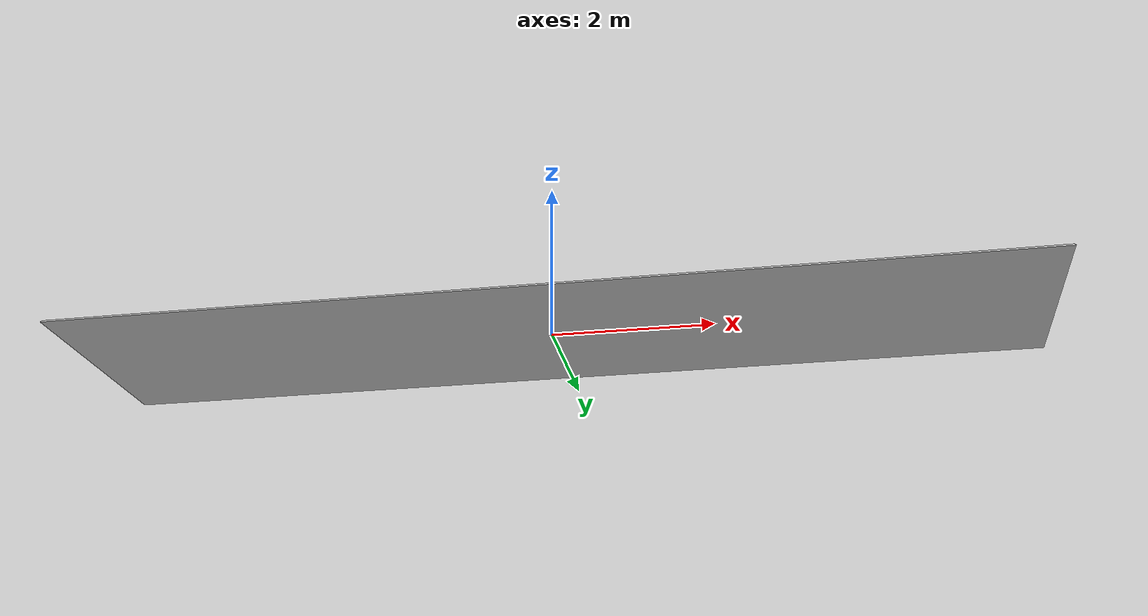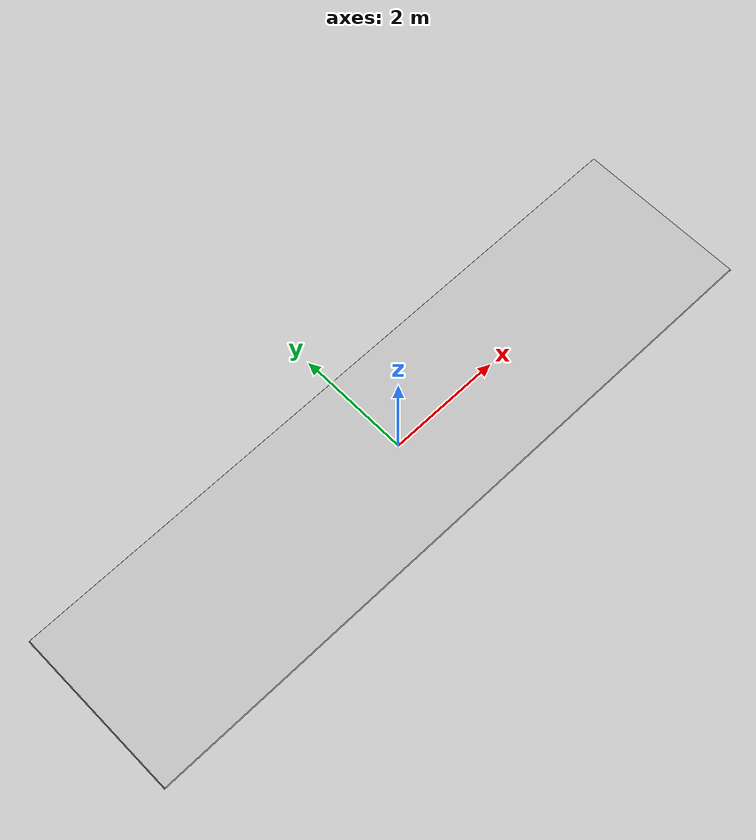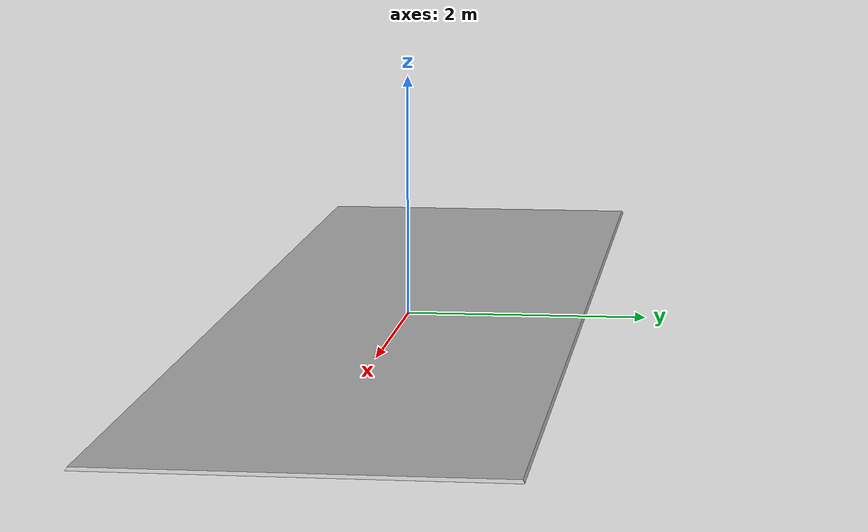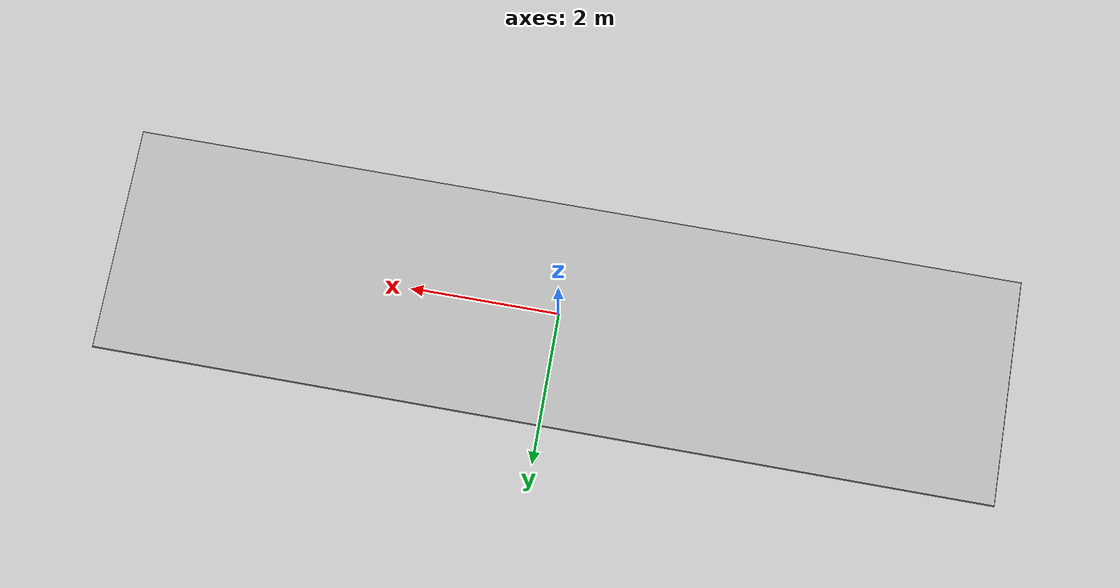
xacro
<?xml version="1.0" ?>
<robot name="Cen1" xmlns:xacro="http://www.ros.org/wiki/xacro">

<xacro:include filename="$(find Cen1_description)/urdf/materials.xacro" />
<xacro:include filename="$(find Cen1_description)/urdf/Cen1.ros2control" />
<xacro:include filename="$(find Cen1_description)/urdf/Cen1.gazebo" />
<link name="base_link">
  <inertial>
    <origin xyz="-8.433761940152213e-07 1.0297002474547836e-08 0.012475312043725232" rpy="0 0 0"/>
    <mass value="7029.080482855327"/>
    <inertia ixx="5229.465132" iyy="84178.131185" izz="89406.864177" ixy="0.0" iyz="-0.0" ixz="6e-06"/>
  </inertial>
  <visual>
    <origin xyz="0 0 0" rpy="0 0 0"/>
    <geometry>
      <mesh filename="file://$(find Cen1_description)/meshes/base_link.stl" scale="0.001 0.001 0.001"/>
    </geometry>
    <material name="silver"/>
  </visual>
  <collision>
    <origin xyz="0 0 0" rpy="0 0 0"/>
    <geometry>
      <mesh filename="file://$(find Cen1_description)/meshes/base_link.stl" scale="0.001 0.001 0.001"/>
    </geometry>
  </collision>
</link>

</robot>

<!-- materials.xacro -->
<robot name="Cen1" xmlns:xacro="http://www.ros.org/wiki/xacro" >

<material name="silver">
  <color rgba="0.700 0.700 0.700 1.000"/>
</material>

</robot>

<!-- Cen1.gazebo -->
<robot name="Cen1" xmlns:xacro="http://www.ros.org/wiki/xacro" >

<xacro:property name="body_color" value="Gazebo/Silver" />

<gazebo reference="base_link">
  <material>${body_color}</material>
  <mu1>0.2</mu1>
  <mu2>0.2</mu2>
  <self_collide>true</self_collide>
  <gravity>true</gravity>
</gazebo>

</robot>
